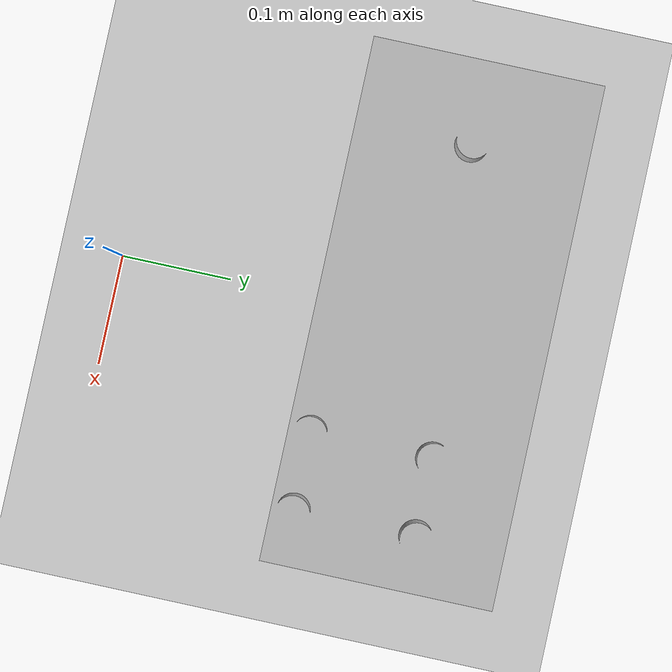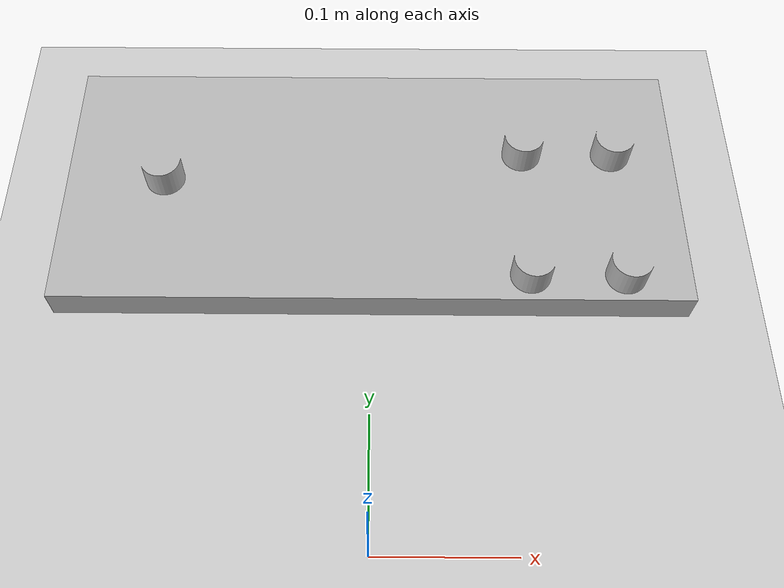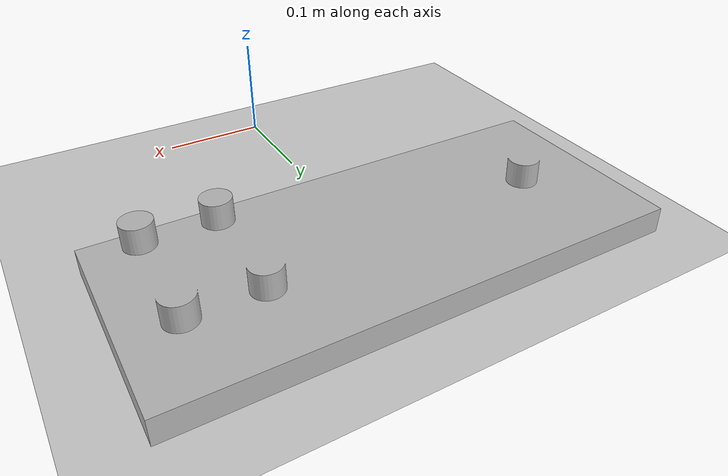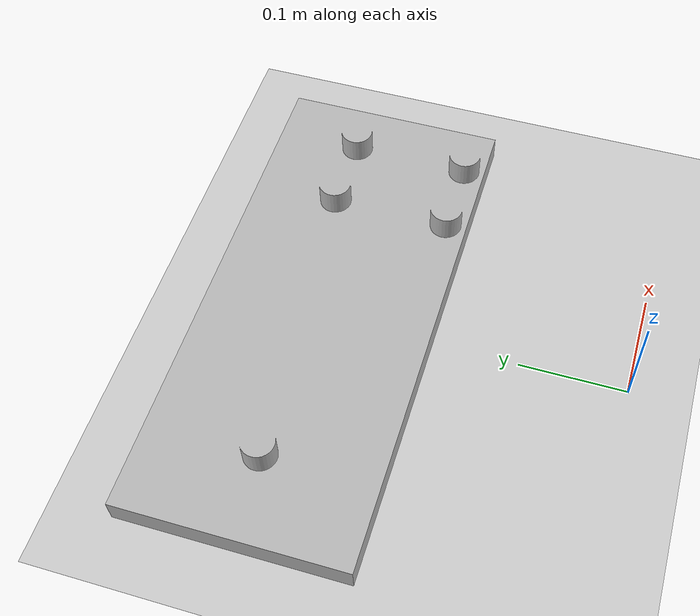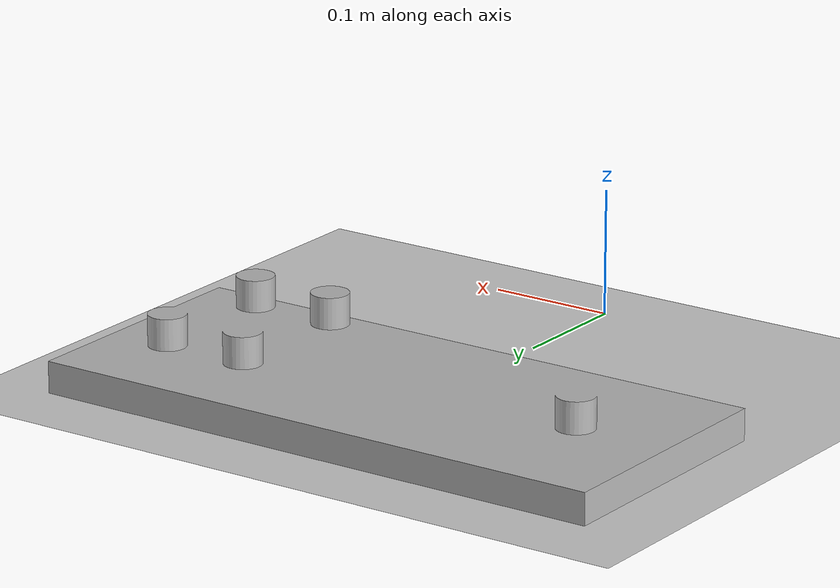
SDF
<?xml version="1.0" ?>

<sdf version="1.5">
	<world name="default">
		<!-- A global light source -->
		<include>
			<uri>model://sun</uri>
		</include>

		<!-- A ground plane -->
		<include>
			<uri>model://ground_plane</uri>
		</include>

		<!-- A ramp -->
		<include>
			<uri>model://baseplate</uri>
		</include>

	</world>
</sdf>

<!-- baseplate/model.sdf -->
<sdf version="1.5">
  <!-- Baseplate -->
  <model name="baseplate">
    <pose>0 0 0 0 0 0</pose>
    <static>true</static>
    <link name="main">
      <collision name='Collision'>
        <geometry>
          <mesh>
            <uri>model://baseplate/meshes/baseplate.stl</uri>
            <scale>0.01 0.01 0.01</scale>
          </mesh>
        </geometry>
      </collision>
      <visual name="Visual">
        <geometry>
          <mesh>
            <uri>model://baseplate/meshes/baseplate.stl</uri>
            <scale>0.01 0.01 0.01</scale>
          </mesh>
        </geometry>
      </visual>
    </link>
  </model>
</sdf>
